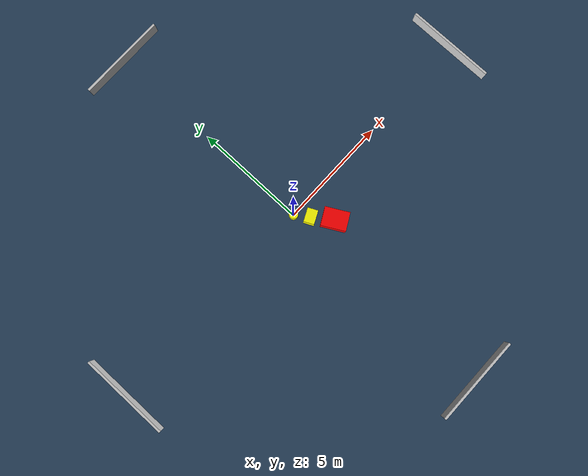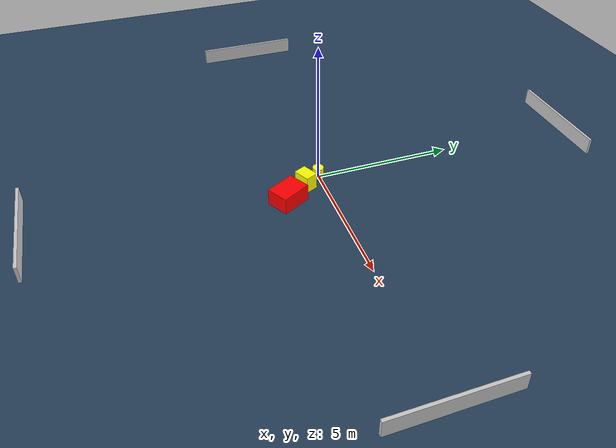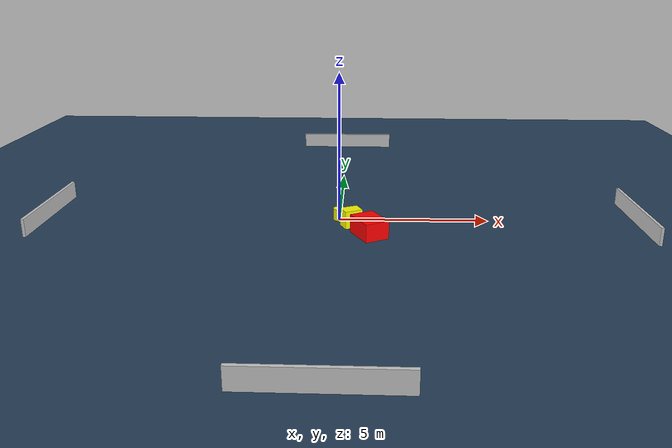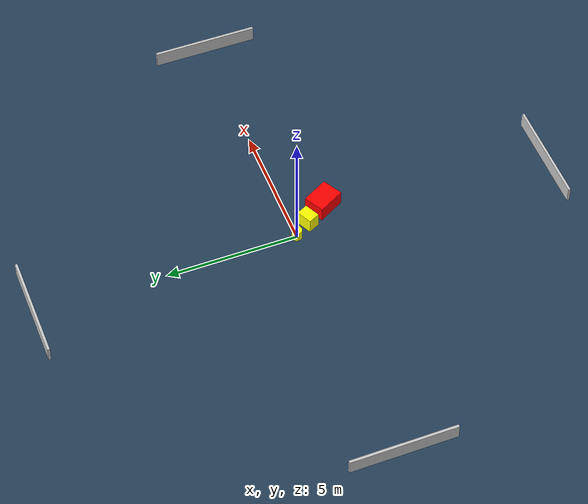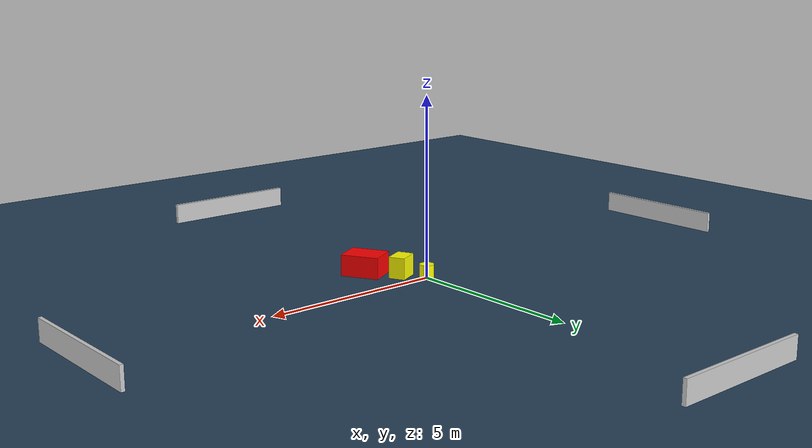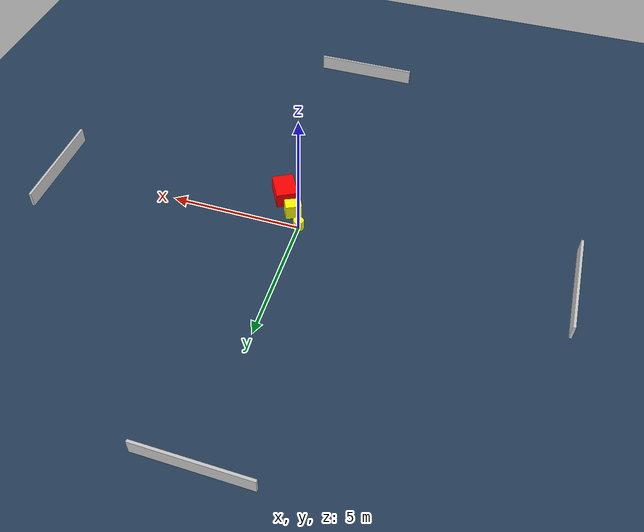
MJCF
<?xml version="1.0" ?>
<mujoco model="generated_environment">
  <option timestep="0.01" integrator="RK4" cone="elliptic"/>
  <default>
    <geom density="1"/>
  </default>
  <asset>
    <texture builtin="gradient" height="3072" name="skybox" rgb1="0.3 0.5 0.7" rgb2="0 0 0" type="skybox" width="512"/>
    <texture builtin="checker" height="300" name="groundplane" rgb1="0.2 0.3 0.4" rgb2="0.1 0.2 0.3" type="2d" width="300"/>
    <material name="groundplane" reflectance="0.2" texrepeat="5 5" texture="groundplane"/>
  </asset>
  <worldbody>
    <light dir="0 0 -1" directional="true" pos="0 0 1.5"/>
    <geom condim="3" friction="0.5 0.005 0.001" material="groundplane" name="floor" pos="0 0 0" size="0 0 0.05" type="plane"/>
    <body name="walls">
      <geom name="wall_1" condim="4" pos="-10.0 0.0 0.3" rgba="0.800000011920929 0.800000011920929 0.800000011920929 1.0" size="0.05 2.0 0.3" type="box"/>
      <geom name="wall_2" condim="4" pos="10.0 0.0 0.3" rgba="0.800000011920929 0.800000011920929 0.800000011920929 1.0" size="0.05 2.0 0.3" type="box"/>
      <geom name="wall_3" condim="4" pos="0.0 -10.0 0.3" rgba="0.800000011920929 0.800000011920929 0.800000011920929 1.0" size="2.0 0.05 0.3" type="box"/>
      <geom name="wall_4" condim="4" pos="0.0 10.0 0.3" rgba="0.800000011920929 0.800000011920929 0.800000011920929 1.0" size="2.0 0.05 0.3" type="box"/>
    </body>
    <body name="robot">
      <joint name="joint_x" type="slide" pos="0 0 0" axis="1 0 0"/>
      <joint name="joint_y" type="slide" pos="0 0 0" axis="0 1 0"/>
      <geom name="robot" type="cylinder" pos="0.0 0.0 0.2" size="0.2 0.2 0.0" mass="5.0" friction="1.0 0.005 0.0001" condim="4" rgba="1.0 1.0 0.0 1.0"/>
    </body>
    <body name="obstacle_1_movable">
      <geom name="obstacle_1_movable" condim="4" pos="0.41032793701465 -0.5979657260383066 0.3" euler="0 0 295.546873827373" friction="0.0 0.005 0.001" rgba="1.0 1.0 0.0 1.0" size="0.22987458352828039 0.30699701769750054 0.3" type="box" mass="0.1"/>
      <joint type="free"/>
    </body>
    <body name="obstacle_2_static">
      <geom name="obstacle_2_static" condim="4" pos="1.0086991932228995 -1.4254041516095235 0.3" euler="0 0 118.58694481599375" friction="0.0 0.005 0.001" rgba="1.0 0.0 0.0 1.0" size="0.5430232371360713 0.4089690181698925 0.3" type="box"/>
    </body>
  </worldbody>
  <actuator>
    <motor name="actuator_x" joint="joint_x" gear="1" ctrlrange="-1 1"/>
    <motor name="actuator_y" joint="joint_y" gear="1" ctrlrange="-1 1"/>
  </actuator>
</mujoco>
